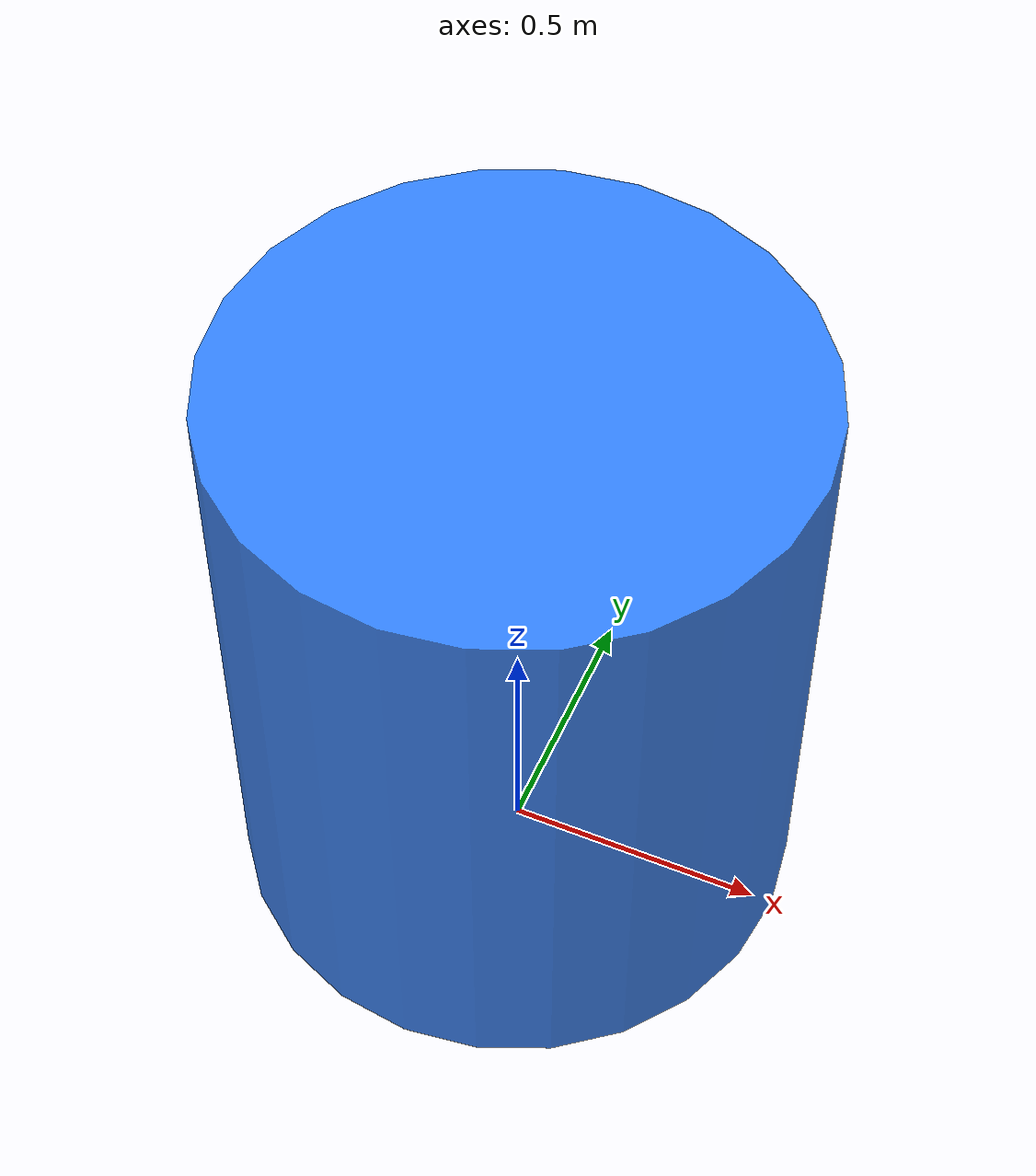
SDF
<?xml version="1.0"?>
<sdf version="1.7">
  <model name="schleiftrog_bbox">
    <static>true</static>
    <link name="schleiftrog_bbox_link">
      <pose>0 0 0.61 0 0 0</pose>
      <collision name="schleiftrog_bbox_collision">
        <geometry>
          <cylinder>
            <radius>0.54</radius>
            <length>1.22</length>
          </cylinder>
        </geometry>
      </collision>
      <visual name="schleiftrog_bbox_visual">
        <geometry>
          <cylinder>
            <radius>0.54</radius>
            <length>1.22</length>
          </cylinder>
        </geometry>
        <material>
          <ambient>0.10 0.45 1.00 0.85</ambient>
          <diffuse>0.10 0.45 1.00 0.85</diffuse>
          <specular>0.10 0.10 0.10 1.0</specular>
        </material>
        <transparency>0.15</transparency>
      </visual>
    </link>
  </model>
</sdf>
